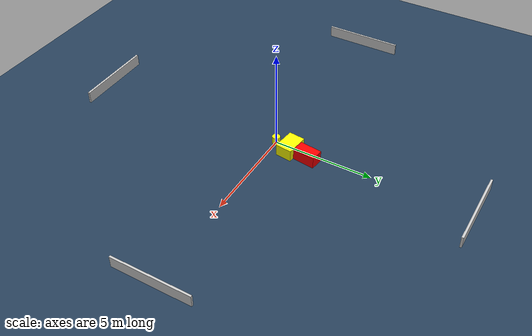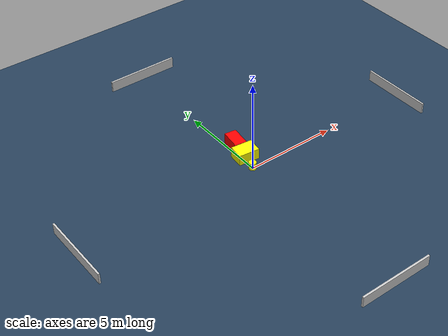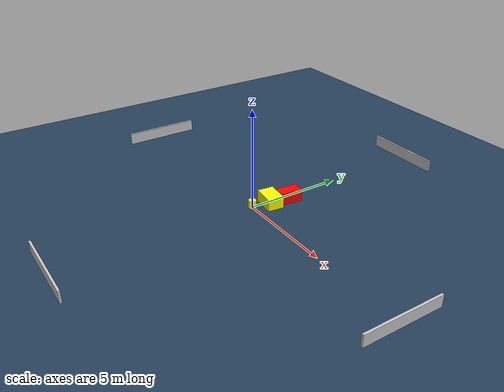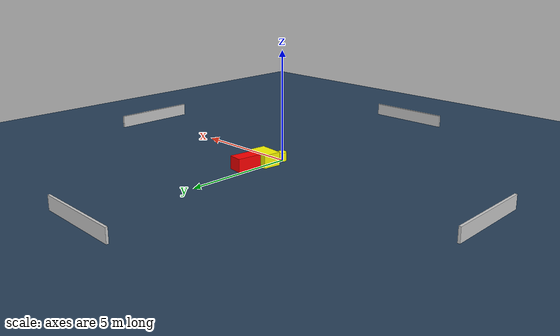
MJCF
<?xml version="1.0" ?>
<mujoco model="generated_environment">
  <option timestep="0.01" integrator="RK4" cone="elliptic"/>
  <default>
    <geom density="1"/>
  </default>
  <asset>
    <texture builtin="gradient" height="3072" name="skybox" rgb1="0.3 0.5 0.7" rgb2="0 0 0" type="skybox" width="512"/>
    <texture builtin="checker" height="300" name="groundplane" rgb1="0.2 0.3 0.4" rgb2="0.1 0.2 0.3" type="2d" width="300"/>
    <material name="groundplane" reflectance="0.2" texrepeat="5 5" texture="groundplane"/>
  </asset>
  <worldbody>
    <light dir="0 0 -1" directional="true" pos="0 0 1.5"/>
    <geom condim="3" friction="0.5 0.005 0.001" material="groundplane" name="floor" pos="0 0 0" size="0 0 0.05" type="plane"/>
    <body name="walls">
      <geom name="wall_1" condim="4" pos="-10.0 0.0 0.3" rgba="0.800000011920929 0.800000011920929 0.800000011920929 1.0" size="0.05 2.0 0.3" type="box"/>
      <geom name="wall_2" condim="4" pos="10.0 0.0 0.3" rgba="0.800000011920929 0.800000011920929 0.800000011920929 1.0" size="0.05 2.0 0.3" type="box"/>
      <geom name="wall_3" condim="4" pos="0.0 -10.0 0.3" rgba="0.800000011920929 0.800000011920929 0.800000011920929 1.0" size="2.0 0.05 0.3" type="box"/>
      <geom name="wall_4" condim="4" pos="0.0 10.0 0.3" rgba="0.800000011920929 0.800000011920929 0.800000011920929 1.0" size="2.0 0.05 0.3" type="box"/>
    </body>
    <body name="robot">
      <joint name="joint_x" type="slide" pos="0 0 0" axis="1 0 0"/>
      <joint name="joint_y" type="slide" pos="0 0 0" axis="0 1 0"/>
      <geom name="robot" type="cylinder" pos="0.0 0.0 0.2" size="0.2 0.2 0.0" mass="5.0" friction="1.0 0.005 0.0001" condim="4" rgba="1.0 1.0 0.0 1.0"/>
    </body>
    <body name="obstacle_1_movable">
      <geom name="obstacle_1_movable" condim="4" pos="0.2321303453861084 0.8983114449243408 0.3" euler="0 0 83.52929187247888" friction="0.0 0.005 0.001" rgba="1.0 1.0 0.0 1.0" size="0.4139721337200998 0.5745492448760781 0.3" type="box" mass="0.1"/>
      <joint type="free"/>
    </body>
    <body name="obstacle_2_static">
      <geom name="obstacle_2_static" condim="4" pos="0.371009681156509 1.8819943024307102 0.3" euler="0 0 352.4804017109121" friction="0.0 0.005 0.001" rgba="1.0 0.0 0.0 1.0" size="0.3242810786725159 0.5610125955617928 0.3" type="box"/>
    </body>
  </worldbody>
  <actuator>
    <motor name="actuator_x" joint="joint_x" gear="1" ctrlrange="-1 1"/>
    <motor name="actuator_y" joint="joint_y" gear="1" ctrlrange="-1 1"/>
  </actuator>
</mujoco>
